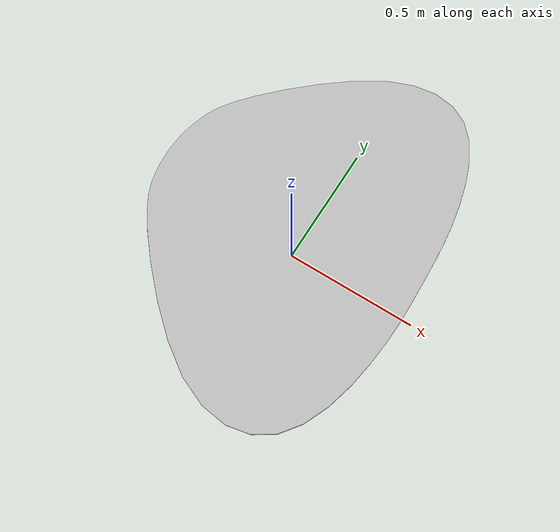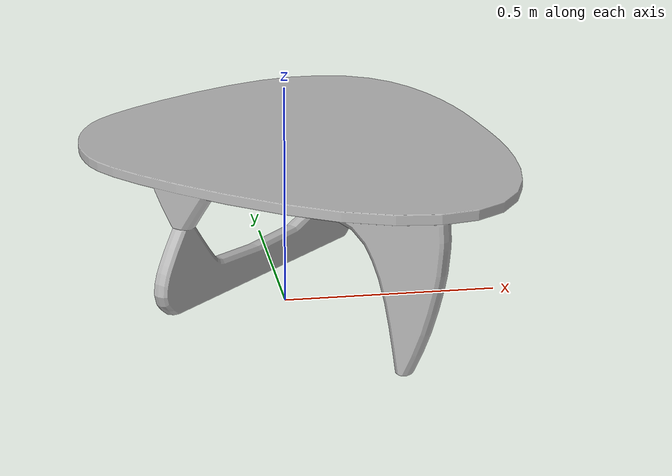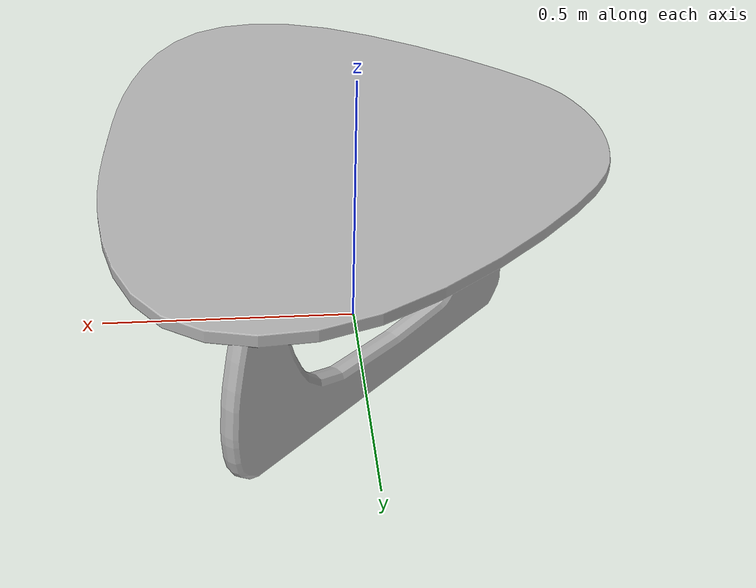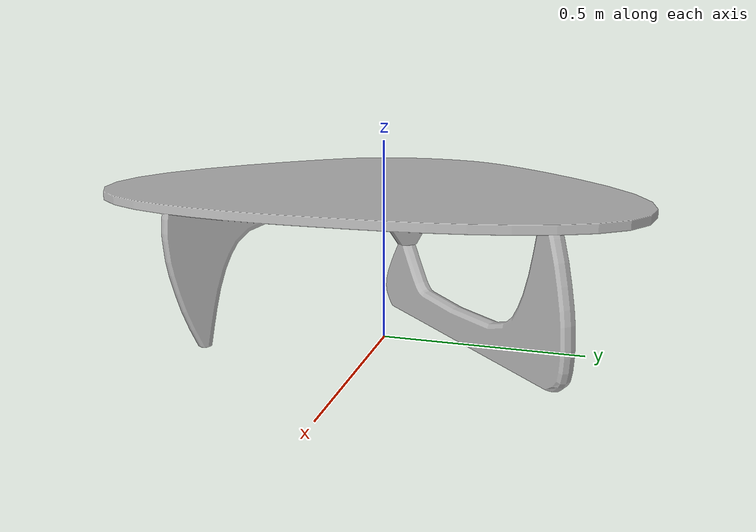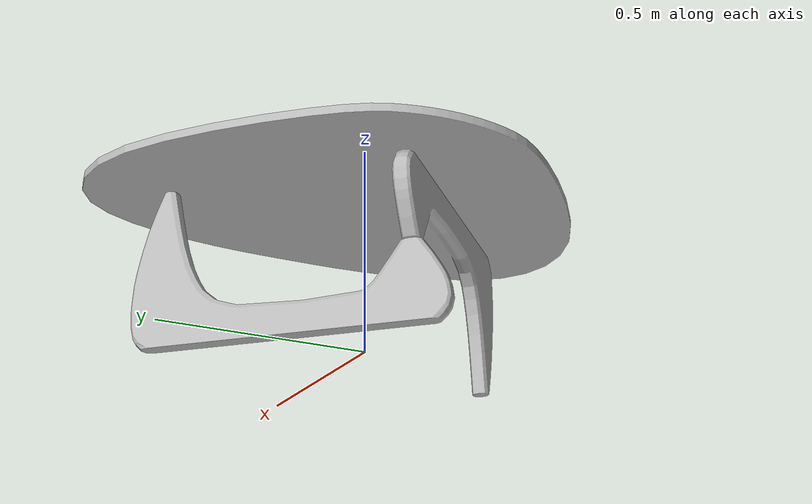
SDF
<?xml version='1.0'?>
<sdf version='1.4'>
  <model name='s__1720'>
    <pose>0 0 0 0 0 0</pose>
    <static>true</static>
    <link name='link'>
      <collision name='collision'>
        <pose>0 0 0 0 0 0</pose>
        <geometry>
          <box>
            <size>0.9 1.25 2</size>
          </box>
        </geometry>
      </collision>
      <visual name='visual'>
        <pose>0 0 0 0 0 0</pose>
        <geometry>
          <mesh><uri>model://s__1720/s__1720.dae</uri></mesh>
        </geometry>
      </visual>
    </link>
  </model>
</sdf>
